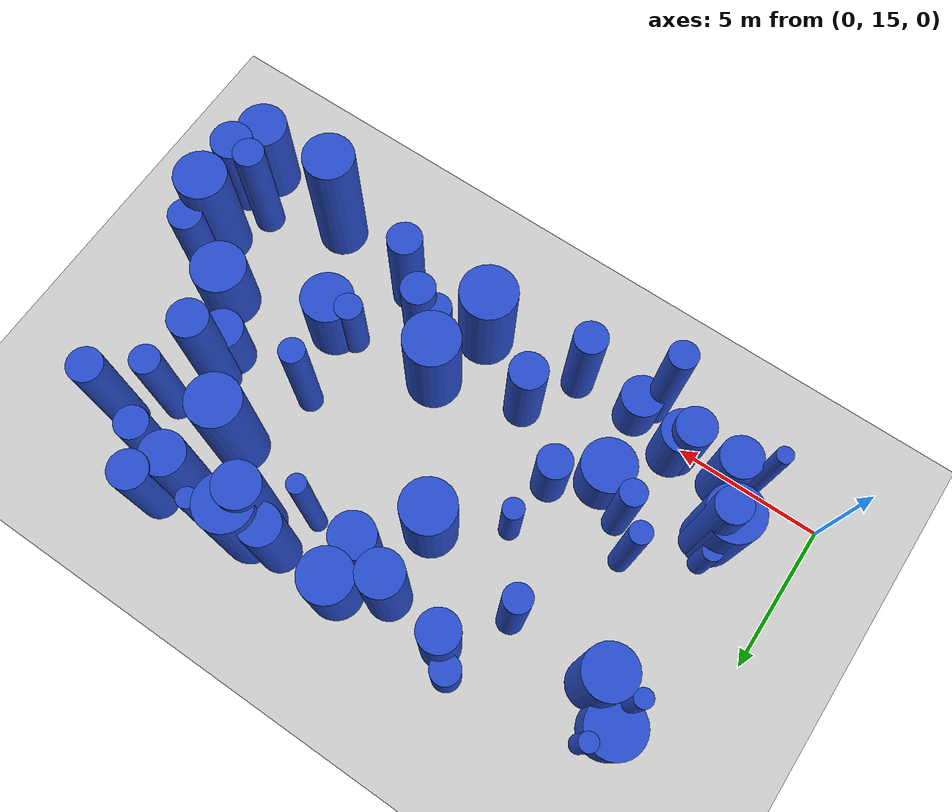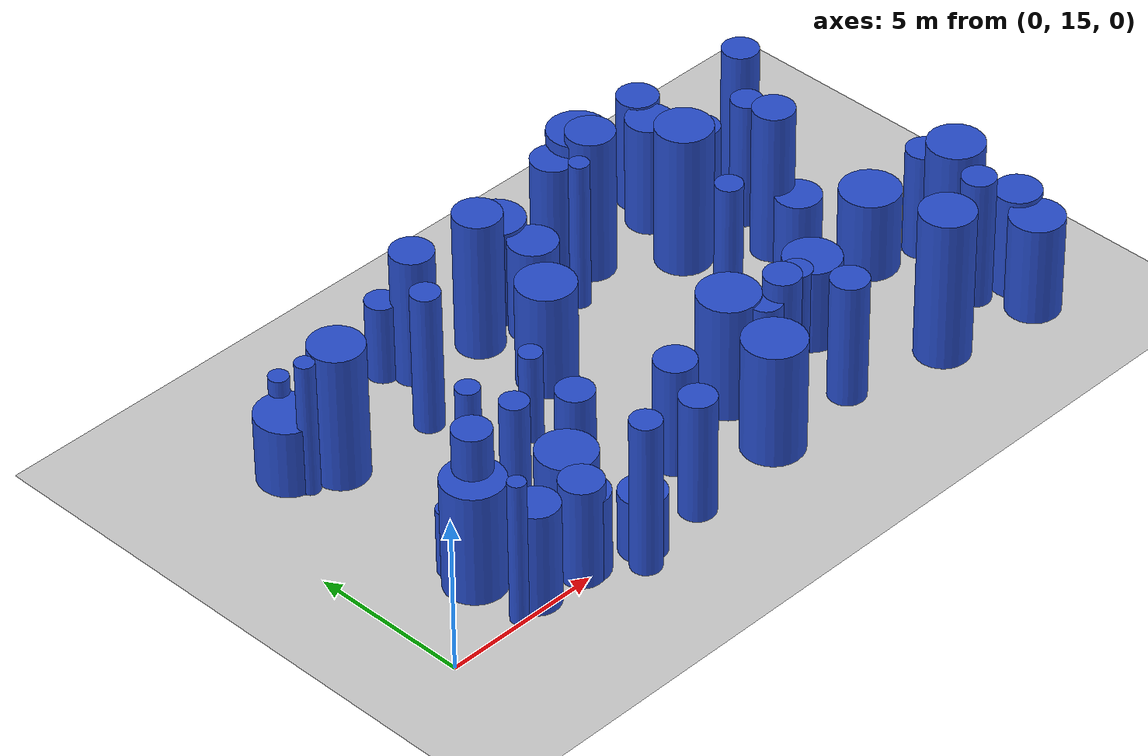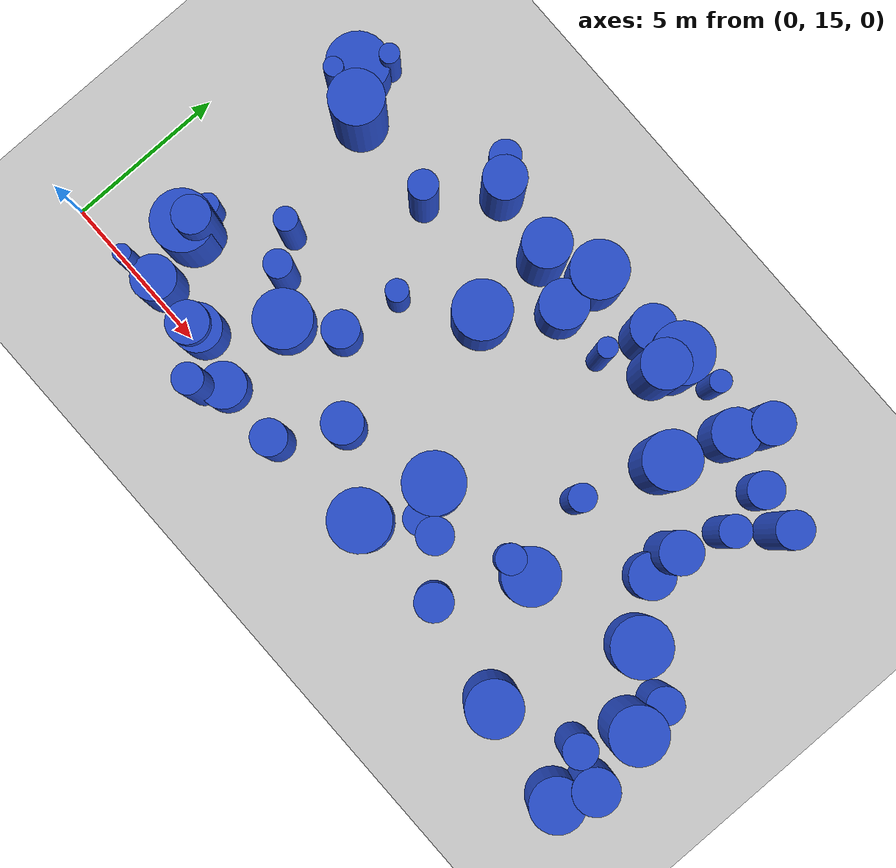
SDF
<sdf version="1.6">
 <world name="default">
  <model name="ground_plane">
   <static>1</static>
   <link name="link">
    <collision name="collision">
     <geometry><plane><normal>0 0 1</normal><size>100 100</size></plane></geometry>
     <surface><friction><ode><mu>100</mu><mu2>50</mu2></ode></friction></surface>
    </collision>
    <visual name="visual">
     <cast_shadows>0</cast_shadows>
     <geometry><plane><normal>0 0 1</normal><size>100 100</size></plane></geometry>
     <material>
      <script><uri>file://media/materials/scripts/gazebo.material</uri><name>Gazebo/Grey</name></script>
     </material>
    </visual>
   </link>
  </model>
  <model name="2">
   <static>0</static>
   <link name="link">
    <inertial>
     <mass>2</mass>
     <inertia><ixx>1.22837</ixx><ixy>0</ixy><ixz>0</ixz><iyy>1.22837</iyy><iyz>0</iyz><izz>0.232608</izz></inertia>
    </inertial>
    <collision name="collision">
     <geometry><cylinder><length>2.5831</length><radius>0.482294</radius></cylinder></geometry>
     <surface><contact><collide_without_contact>1</collide_without_contact></contact></surface>
    </collision>
    <visual name="visual">
     <geometry><cylinder><length>2.5831</length><radius>0.482294</radius></cylinder></geometry>
     <material>
      <script><uri>file://media/materials/scripts/gazebo.material</uri><name>Gazebo/Blue</name></script>
     </material>
    </visual>
    <gravity>0</gravity>
   </link>
   <pose>7.27465 25.3161 1.29155 0 -0 0</pose>
  </model>
  <model name="8">
   <static>0</static>
   <link name="link">
    <inertial>
     <mass>2</mass>
     <inertia><ixx>3.2449</ixx><ixy>0</ixy><ixz>0</ixz><iyy>3.2449</iyy><iyz>0</iyz><izz>0.0853454</izz></inertia>
    </inertial>
    <collision name="collision">
     <geometry><cylinder><length>4.3833</length><radius>0.292139</radius></cylinder></geometry>
     <surface><contact><collide_without_contact>1</collide_without_contact></contact></surface>
    </collision>
    <visual name="visual">
     <geometry><cylinder><length>4.3833</length><radius>0.292139</radius></cylinder></geometry>
     <material>
      <script><uri>file://media/materials/scripts/gazebo.material</uri><name>Gazebo/Blue</name></script>
     </material>
    </visual>
    <gravity>0</gravity>
   </link>
   <pose>2.40092 23.0819 2.19165 0 -0 0</pose>
  </model>
  <model name="18">
   <static>0</static>
   <link name="link">
    <inertial>
     <mass>2</mass>
     <inertia><ixx>1.88839</ixx><ixy>0</ixy><ixz>0</ixz><iyy>1.88839</iyy><iyz>0</iyz><izz>0.554769</izz></inertia>
    </inertial>
    <collision name="collision">
     <geometry><cylinder><length>3.10903</length><radius>0.744828</radius></cylinder></geometry>
     <surface><contact><collide_without_contact>1</collide_without_contact></contact></surface>
    </collision>
    <visual name="visual">
     <geometry><cylinder><length>3.10903</length><radius>0.744828</radius></cylinder></geometry>
     <material>
      <script><uri>file://media/materials/scripts/gazebo.material</uri><name>Gazebo/Blue</name></script>
     </material>
    </visual>
    <gravity>0</gravity>
   </link>
   <pose>11.6379 23.7222 1.55451 0 -0 0</pose>
  </model>
  <model name="25">
   <static>0</static>
   <link name="link">
    <inertial>
     <mass>2</mass>
     <inertia><ixx>3.26068</ixx><ixy>0</ixy><ixz>0</ixz><iyy>3.26068</iyy><iyz>0</iyz><izz>0.425175</izz></inertia>
    </inertial>
    <collision name="collision">
     <geometry><cylinder><length>4.27651</length><radius>0.652054</radius></cylinder></geometry>
     <surface><contact><collide_without_contact>1</collide_without_contact></contact></surface>
    </collision>
    <visual name="visual">
     <geometry><cylinder><length>4.27651</length><radius>0.652054</radius></cylinder></geometry>
     <material>
      <script><uri>file://media/materials/scripts/gazebo.material</uri><name>Gazebo/Blue</name></script>
     </material>
    </visual>
    <gravity>0</gravity>
   </link>
   <pose>7.91158 24.6829 2.13826 0 -0 0</pose>
  </model>
  <model name="37">
   <static>0</static>
   <link name="link">
    <inertial>
     <mass>2</mass>
     <inertia><ixx>4.25456</ixx><ixy>0</ixy><ixz>0</ixz><iyy>4.25456</iyy><iyz>0</iyz><izz>0.212678</izz></inertia>
    </inertial>
    <collision name="collision">
     <geometry><cylinder><length>4.98892</length><radius>0.46117</radius></cylinder></geometry>
     <surface><contact><collide_without_contact>1</collide_without_contact></contact></surface>
    </collision>
    <visual name="visual">
     <geometry><cylinder><length>4.98892</length><radius>0.46117</radius></cylinder></geometry>
     <material>
      <script><uri>file://media/materials/scripts/gazebo.material</uri><name>Gazebo/Blue</name></script>
     </material>
    </visual>
    <gravity>0</gravity>
   </link>
   <pose>6.44506 14.3001 2.49446 0 -0 0</pose>
  </model>
  <model name="54">
   <static>0</static>
   <link name="link">
    <inertial>
     <mass>2</mass>
     <inertia><ixx>2.11658</ixx><ixy>0</ixy><ixz>0</ixz><iyy>2.11658</iyy><iyz>0</iyz><izz>0.764272</izz></inertia>
    </inertial>
    <collision name="collision">
     <geometry><cylinder><length>3.22594</length><radius>0.874226</radius></cylinder></geometry>
     <surface><contact><collide_without_contact>1</collide_without_contact></contact></surface>
    </collision>
    <visual name="visual">
     <geometry><cylinder><length>3.22594</length><radius>0.874226</radius></cylinder></geometry>
     <material>
      <script><uri>file://media/materials/scripts/gazebo.material</uri><name>Gazebo/Blue</name></script>
     </material>
    </visual>
    <gravity>0</gravity>
   </link>
   <pose>11.5601 25.1175 1.61297 0 -0 0</pose>
  </model>
  <model name="58">
   <static>0</static>
   <link name="link">
    <inertial>
     <mass>2</mass>
     <inertia><ixx>4.36397</ixx><ixy>0</ixy><ixz>0</ixz><iyy>4.36397</iyy><iyz>0</iyz><izz>0.40593</izz></inertia>
    </inertial>
    <collision name="collision">
     <geometry><cylinder><length>4.9966</length><radius>0.637126</radius></cylinder></geometry>
     <surface><contact><collide_without_contact>1</collide_without_contact></contact></surface>
    </collision>
    <visual name="visual">
     <geometry><cylinder><length>4.9966</length><radius>0.637126</radius></cylinder></geometry>
     <material>
      <script><uri>file://media/materials/scripts/gazebo.material</uri><name>Gazebo/Blue</name></script>
     </material>
    </visual>
    <gravity>0</gravity>
   </link>
   <pose>19.0079 21.4355 2.4983 0 -0 0</pose>
  </model>
  <model name="60">
   <static>0</static>
   <link name="link">
    <inertial>
     <mass>2</mass>
     <inertia><ixx>2.10807</ixx><ixy>0</ixy><ixz>0</ixz><iyy>2.10807</iyy><iyz>0</iyz><izz>0.46283</izz></inertia>
    </inertial>
    <collision name="collision">
     <geometry><cylinder><length>3.35558</length><radius>0.680316</radius></cylinder></geometry>
     <surface><contact><collide_without_contact>1</collide_without_contact></contact></surface>
    </collision>
    <visual name="visual">
     <geometry><cylinder><length>3.35558</length><radius>0.680316</radius></cylinder></geometry>
     <material>
      <script><uri>file://media/materials/scripts/gazebo.material</uri><name>Gazebo/Blue</name></script>
     </material>
    </visual>
    <gravity>0</gravity>
   </link>
   <pose>3.4312 15.3851 1.67779 0 -0 0</pose>
  </model>
  <model name="68">
   <static>0</static>
   <link name="link">
    <inertial>
     <mass>2</mass>
     <inertia><ixx>3.23066</ixx><ixy>0</ixy><ixz>0</ixz><iyy>3.23066</iyy><iyz>0</iyz><izz>0.309378</izz></inertia>
    </inertial>
    <collision name="collision">
     <geometry><cylinder><length>4.29602</length><radius>0.556217</radius></cylinder></geometry>
     <surface><contact><collide_without_contact>1</collide_without_contact></contact></surface>
    </collision>
    <visual name="visual">
     <geometry><cylinder><length>4.29602</length><radius>0.556217</radius></cylinder></geometry>
     <material>
      <script><uri>file://media/materials/scripts/gazebo.material</uri><name>Gazebo/Blue</name></script>
     </material>
    </visual>
    <gravity>0</gravity>
   </link>
   <pose>14.1985 16.6179 2.14801 0 -0 0</pose>
  </model>
  <model name="72">
   <static>0</static>
   <link name="link">
    <inertial>
     <mass>2</mass>
     <inertia><ixx>1.15911</ixx><ixy>0</ixy><ixz>0</ixz><iyy>1.15911</iyy><iyz>0</iyz><izz>0.497429</izz></inertia>
    </inertial>
    <collision name="collision">
     <geometry><cylinder><length>2.33717</length><radius>0.705286</radius></cylinder></geometry>
     <surface><contact><collide_without_contact>1</collide_without_contact></contact></surface>
    </collision>
    <visual name="visual">
     <geometry><cylinder><length>2.33717</length><radius>0.705286</radius></cylinder></geometry>
     <material>
      <script><uri>file://media/materials/scripts/gazebo.material</uri><name>Gazebo/Blue</name></script>
     </material>
    </visual>
    <gravity>0</gravity>
   </link>
   <pose>19.1477 20.5677 1.16859 0 -0 0</pose>
  </model>
  <model name="76">
   <static>0</static>
   <link name="link">
    <inertial>
     <mass>2</mass>
     <inertia><ixx>4.14211</ixx><ixy>0</ixy><ixz>0</ixz><iyy>4.14211</iyy><iyz>0</iyz><izz>0.313951</izz></inertia>
    </inertial>
    <collision name="collision">
     <geometry><cylinder><length>4.88987</length><radius>0.560314</radius></cylinder></geometry>
     <surface><contact><collide_without_contact>1</collide_without_contact></contact></surface>
    </collision>
    <visual name="visual">
     <geometry><cylinder><length>4.88987</length><radius>0.560314</radius></cylinder></geometry>
     <material>
      <script><uri>file://media/materials/scripts/gazebo.material</uri><name>Gazebo/Blue</name></script>
     </material>
    </visual>
    <gravity>0</gravity>
   </link>
   <pose>20.5966 24.224 2.44494 0 -0 0</pose>
  </model>
  <model name="99">
   <static>0</static>
   <link name="link">
    <inertial>
     <mass>2</mass>
     <inertia><ixx>2.61287</ixx><ixy>0</ixy><ixz>0</ixz><iyy>2.61287</iyy><iyz>0</iyz><izz>0.855804</izz></inertia>
    </inertial>
    <collision name="collision">
     <geometry><cylinder><length>3.62074</length><radius>0.925097</radius></cylinder></geometry>
     <surface><contact><collide_without_contact>1</collide_without_contact></contact></surface>
    </collision>
    <visual name="visual">
     <geometry><cylinder><length>3.62074</length><radius>0.925097</radius></cylinder></geometry>
     <material>
      <script><uri>file://media/materials/scripts/gazebo.material</uri><name>Gazebo/Blue</name></script>
     </material>
    </visual>
    <gravity>0</gravity>
   </link>
   <pose>2.77032 17.0511 1.81037 0 -0 0</pose>
  </model>
  <model name="125">
   <static>0</static>
   <link name="link">
    <inertial>
     <mass>2</mass>
     <inertia><ixx>3.34124</ixx><ixy>0</ixy><ixz>0</ixz><iyy>3.34124</iyy><iyz>0</iyz><izz>0.173508</izz></inertia>
    </inertial>
    <collision name="collision">
     <geometry><cylinder><length>4.41893</length><radius>0.416543</radius></cylinder></geometry>
     <surface><contact><collide_without_contact>1</collide_without_contact></contact></surface>
    </collision>
    <visual name="visual">
     <geometry><cylinder><length>4.41893</length><radius>0.416543</radius></cylinder></geometry>
     <material>
      <script><uri>file://media/materials/scripts/gazebo.material</uri><name>Gazebo/Blue</name></script>
     </material>
    </visual>
    <gravity>0</gravity>
   </link>
   <pose>16.0917 20.4093 2.20946 0 -0 0</pose>
  </model>
  <model name="126">
   <static>0</static>
   <link name="link">
    <inertial>
     <mass>2</mass>
     <inertia><ixx>3.84882</ixx><ixy>0</ixy><ixz>0</ixz><iyy>3.84882</iyy><iyz>0</iyz><izz>0.201271</izz></inertia>
    </inertial>
    <collision name="collision">
     <geometry><cylinder><length>4.74227</length><radius>0.448632</radius></cylinder></geometry>
     <surface><contact><collide_without_contact>1</collide_without_contact></contact></surface>
    </collision>
    <visual name="visual">
     <geometry><cylinder><length>4.74227</length><radius>0.448632</radius></cylinder></geometry>
     <material>
      <script><uri>file://media/materials/scripts/gazebo.material</uri><name>Gazebo/Blue</name></script>
     </material>
    </visual>
    <gravity>0</gravity>
   </link>
   <pose>18.9164 21.5327 2.37113 0 -0 0</pose>
  </model>
  <model name="137">
   <static>0</static>
   <link name="link">
    <inertial>
     <mass>2</mass>
     <inertia><ixx>2.74249</ixx><ixy>0</ixy><ixz>0</ixz><iyy>2.74249</iyy><iyz>0</iyz><izz>0.301239</izz></inertia>
    </inertial>
    <collision name="collision">
     <geometry><cylinder><length>3.94351</length><radius>0.548853</radius></cylinder></geometry>
     <surface><contact><collide_without_contact>1</collide_without_contact></contact></surface>
    </collision>
    <visual name="visual">
     <geometry><cylinder><length>3.94351</length><radius>0.548853</radius></cylinder></geometry>
     <material>
      <script><uri>file://media/materials/scripts/gazebo.material</uri><name>Gazebo/Blue</name></script>
     </material>
    </visual>
    <gravity>0</gravity>
   </link>
   <pose>9.06308 14.9023 1.97175 0 -0 0</pose>
  </model>
  <model name="138">
   <static>0</static>
   <link name="link">
    <inertial>
     <mass>2</mass>
     <inertia><ixx>1.25555</ixx><ixy>0</ixy><ixz>0</ixz><iyy>1.25555</iyy><iyz>0</iyz><izz>0.317055</izz></inertia>
    </inertial>
    <collision name="collision">
     <geometry><cylinder><length>2.56557</length><radius>0.563077</radius></cylinder></geometry>
     <surface><contact><collide_without_contact>1</collide_without_contact></contact></surface>
    </collision>
    <visual name="visual">
     <geometry><cylinder><length>2.56557</length><radius>0.563077</radius></cylinder></geometry>
     <material>
      <script><uri>file://media/materials/scripts/gazebo.material</uri><name>Gazebo/Blue</name></script>
     </material>
    </visual>
    <gravity>0</gravity>
   </link>
   <pose>19.4157 24.6248 1.28278 0 -0 0</pose>
  </model>
  <model name="145">
   <static>0</static>
   <link name="link">
    <inertial>
     <mass>2</mass>
     <inertia><ixx>1.58926</ixx><ixy>0</ixy><ixz>0</ixz><iyy>1.58926</iyy><iyz>0</iyz><izz>0.858782</izz></inertia>
    </inertial>
    <collision name="collision">
     <geometry><cylinder><length>2.63803</length><radius>0.926705</radius></cylinder></geometry>
     <surface><contact><collide_without_contact>1</collide_without_contact></contact></surface>
    </collision>
    <visual name="visual">
     <geometry><cylinder><length>2.63803</length><radius>0.926705</radius></cylinder></geometry>
     <material>
      <script><uri>file://media/materials/scripts/gazebo.material</uri><name>Gazebo/Blue</name></script>
     </material>
    </visual>
    <gravity>0</gravity>
   </link>
   <pose>20.4552 18.9918 1.31901 0 -0 0</pose>
  </model>
  <model name="158">
   <static>0</static>
   <link name="link">
    <inertial>
     <mass>2</mass>
     <inertia><ixx>3.81418</ixx><ixy>0</ixy><ixz>0</ixz><iyy>3.81418</iyy><iyz>0</iyz><izz>0.83863</izz></inertia>
    </inertial>
    <collision name="collision">
     <geometry><cylinder><length>4.51323</length><radius>0.915767</radius></cylinder></geometry>
     <surface><contact><collide_without_contact>1</collide_without_contact></contact></surface>
    </collision>
    <visual name="visual">
     <geometry><cylinder><length>4.51323</length><radius>0.915767</radius></cylinder></geometry>
     <material>
      <script><uri>file://media/materials/scripts/gazebo.material</uri><name>Gazebo/Blue</name></script>
     </material>
    </visual>
    <gravity>0</gravity>
   </link>
   <pose>14.8925 25.1672 2.25661 0 -0 0</pose>
  </model>
  <model name="159">
   <static>0</static>
   <link name="link">
    <inertial>
     <mass>2</mass>
     <inertia><ixx>2.9021</ixx><ixy>0</ixy><ixz>0</ixz><iyy>2.9021</iyy><iyz>0</iyz><izz>0.328169</izz></inertia>
    </inertial>
    <collision name="collision">
     <geometry><cylinder><length>4.05316</length><radius>0.57286</radius></cylinder></geometry>
     <surface><contact><collide_without_contact>1</collide_without_contact></contact></surface>
    </collision>
    <visual name="visual">
     <geometry><cylinder><length>4.05316</length><radius>0.57286</radius></cylinder></geometry>
     <material>
      <script><uri>file://media/materials/scripts/gazebo.material</uri><name>Gazebo/Blue</name></script>
     </material>
    </visual>
    <gravity>0</gravity>
   </link>
   <pose>15.5833 15.3772 2.02658 0 -0 0</pose>
  </model>
  <model name="164">
   <static>0</static>
   <link name="link">
    <inertial>
     <mass>2</mass>
     <inertia><ixx>3.75948</ixx><ixy>0</ixy><ixz>0</ixz><iyy>3.75948</iyy><iyz>0</iyz><izz>0.530603</izz></inertia>
    </inertial>
    <collision name="collision">
     <geometry><cylinder><length>4.57876</length><radius>0.728425</radius></cylinder></geometry>
     <surface><contact><collide_without_contact>1</collide_without_contact></contact></surface>
    </collision>
    <visual name="visual">
     <geometry><cylinder><length>4.57876</length><radius>0.728425</radius></cylinder></geometry>
     <material>
      <script><uri>file://media/materials/scripts/gazebo.material</uri><name>Gazebo/Blue</name></script>
     </material>
    </visual>
    <gravity>0</gravity>
   </link>
   <pose>10.0972 24.3275 2.28938 0 -0 0</pose>
  </model>
  <model name="193">
   <static>0</static>
   <link name="link">
    <inertial>
     <mass>2</mass>
     <inertia><ixx>3.13722</ixx><ixy>0</ixy><ixz>0</ixz><iyy>3.13722</iyy><iyz>0</iyz><izz>0.127114</izz></inertia>
    </inertial>
    <collision name="collision">
     <geometry><cylinder><length>4.29441</length><radius>0.356531</radius></cylinder></geometry>
     <surface><contact><collide_without_contact>1</collide_without_contact></contact></surface>
    </collision>
    <visual name="visual">
     <geometry><cylinder><length>4.29441</length><radius>0.356531</radius></cylinder></geometry>
     <material>
      <script><uri>file://media/materials/scripts/gazebo.material</uri><name>Gazebo/Blue</name></script>
     </material>
    </visual>
    <gravity>0</gravity>
   </link>
   <pose>4.76137 19.2689 2.14721 0 -0 0</pose>
  </model>
  <model name="201">
   <static>0</static>
   <link name="link">
    <inertial>
     <mass>2</mass>
     <inertia><ixx>2.66965</ixx><ixy>0</ixy><ixz>0</ixz><iyy>2.66965</iyy><iyz>0</iyz><izz>0.181986</izz></inertia>
    </inertial>
    <collision name="collision">
     <geometry><cylinder><length>3.93344</length><radius>0.426598</radius></cylinder></geometry>
     <surface><contact><collide_without_contact>1</collide_without_contact></contact></surface>
    </collision>
    <visual name="visual">
     <geometry><cylinder><length>3.93344</length><radius>0.426598</radius></cylinder></geometry>
     <material>
      <script><uri>file://media/materials/scripts/gazebo.material</uri><name>Gazebo/Blue</name></script>
     </material>
    </visual>
    <gravity>0</gravity>
   </link>
   <pose>5.52647 18.2919 1.96672 0 -0 0</pose>
  </model>
  <model name="220">
   <static>0</static>
   <link name="link">
    <inertial>
     <mass>2</mass>
     <inertia><ixx>3.14732</ixx><ixy>0</ixy><ixz>0</ixz><iyy>3.14732</iyy><iyz>0</iyz><izz>0.266988</izz></inertia>
    </inertial>
    <collision name="collision">
     <geometry><cylinder><length>4.25241</length><radius>0.516709</radius></cylinder></geometry>
     <surface><contact><collide_without_contact>1</collide_without_contact></contact></surface>
    </collision>
    <visual name="visual">
     <geometry><cylinder><length>4.25241</length><radius>0.516709</radius></cylinder></geometry>
     <material>
      <script><uri>file://media/materials/scripts/gazebo.material</uri><name>Gazebo/Blue</name></script>
     </material>
    </visual>
    <gravity>0</gravity>
   </link>
   <pose>21.3533 15.7514 2.1262 0 -0 0</pose>
  </model>
  <model name="222">
   <static>0</static>
   <link name="link">
    <inertial>
     <mass>2</mass>
     <inertia><ixx>1.978</ixx><ixy>0</ixy><ixz>0</ixz><iyy>1.978</iyy><iyz>0</iyz><izz>0.418624</izz></inertia>
    </inertial>
    <collision name="collision">
     <geometry><cylinder><length>3.25763</length><radius>0.647012</radius></cylinder></geometry>
     <surface><contact><collide_without_contact>1</collide_without_contact></contact></surface>
    </collision>
    <visual name="visual">
     <geometry><cylinder><length>3.25763</length><radius>0.647012</radius></cylinder></geometry>
     <material>
      <script><uri>file://media/materials/scripts/gazebo.material</uri><name>Gazebo/Blue</name></script>
     </material>
    </visual>
    <gravity>0</gravity>
   </link>
   <pose>5.01282 15.2778 1.62881 0 -0 0</pose>
  </model>
  <model name="224">
   <static>0</static>
   <link name="link">
    <inertial>
     <mass>2</mass>
     <inertia><ixx>2.13754</ixx><ixy>0</ixy><ixz>0</ixz><iyy>2.13754</iyy><iyz>0</iyz><izz>0.501197</izz></inertia>
    </inertial>
    <collision name="collision">
     <geometry><cylinder><length>3.36477</length><radius>0.707953</radius></cylinder></geometry>
     <surface><contact><collide_without_contact>1</collide_without_contact></contact></surface>
    </collision>
    <visual name="visual">
     <geometry><cylinder><length>3.36477</length><radius>0.707953</radius></cylinder></geometry>
     <material>
      <script><uri>file://media/materials/scripts/gazebo.material</uri><name>Gazebo/Blue</name></script>
     </material>
    </visual>
    <gravity>0</gravity>
   </link>
   <pose>22.593 15.3313 1.68238 0 -0 0</pose>
  </model>
  <model name="240">
   <static>0</static>
   <link name="link">
    <inertial>
     <mass>2</mass>
     <inertia><ixx>2.06992</ixx><ixy>0</ixy><ixz>0</ixz><iyy>2.06992</iyy><iyz>0</iyz><izz>0.686423</izz></inertia>
    </inertial>
    <collision name="collision">
     <geometry><cylinder><length>3.21873</length><radius>0.828507</radius></cylinder></geometry>
     <surface><contact><collide_without_contact>1</collide_without_contact></contact></surface>
    </collision>
    <visual name="visual">
     <geometry><cylinder><length>3.21873</length><radius>0.828507</radius></cylinder></geometry>
     <material>
      <script><uri>file://media/materials/scripts/gazebo.material</uri><name>Gazebo/Blue</name></script>
     </material>
    </visual>
    <gravity>0</gravity>
   </link>
   <pose>22.1756 14.2551 1.60937 0 -0 0</pose>
  </model>
  <model name="244">
   <static>0</static>
   <link name="link">
    <inertial>
     <mass>2</mass>
     <inertia><ixx>4.27315</ixx><ixy>0</ixy><ixz>0</ixz><iyy>4.27315</iyy><iyz>0</iyz><izz>0.321418</izz></inertia>
    </inertial>
    <collision name="collision">
     <geometry><cylinder><length>4.96736</length><radius>0.566938</radius></cylinder></geometry>
     <surface><contact><collide_without_contact>1</collide_without_contact></contact></surface>
    </collision>
    <visual name="visual">
     <geometry><cylinder><length>4.96736</length><radius>0.566938</radius></cylinder></geometry>
     <material>
      <script><uri>file://media/materials/scripts/gazebo.material</uri><name>Gazebo/Blue</name></script>
     </material>
    </visual>
    <gravity>0</gravity>
   </link>
   <pose>3.04799 17.3425 2.48368 0 -0 0</pose>
  </model>
  <model name="250">
   <static>0</static>
   <link name="link">
    <inertial>
     <mass>2</mass>
     <inertia><ixx>2.24118</ixx><ixy>0</ixy><ixz>0</ixz><iyy>2.24118</iyy><iyz>0</iyz><izz>0.314927</izz></inertia>
    </inertial>
    <collision name="collision">
     <geometry><cylinder><length>3.53586</length><radius>0.561184</radius></cylinder></geometry>
     <surface><contact><collide_without_contact>1</collide_without_contact></contact></surface>
    </collision>
    <visual name="visual">
     <geometry><cylinder><length>3.53586</length><radius>0.561184</radius></cylinder></geometry>
     <material>
      <script><uri>file://media/materials/scripts/gazebo.material</uri><name>Gazebo/Blue</name></script>
     </material>
    </visual>
    <gravity>0</gravity>
   </link>
   <pose>22.0371 18.3769 1.76793 0 -0 0</pose>
  </model>
  <model name="260">
   <static>0</static>
   <link name="link">
    <inertial>
     <mass>2</mass>
     <inertia><ixx>1.48732</ixx><ixy>0</ixy><ixz>0</ixz><iyy>1.48732</iyy><iyz>0</iyz><izz>0.326078</izz></inertia>
    </inertial>
    <collision name="collision">
     <geometry><cylinder><length>2.81881</length><radius>0.571033</radius></cylinder></geometry>
     <surface><contact><collide_without_contact>1</collide_without_contact></contact></surface>
    </collision>
    <visual name="visual">
     <geometry><cylinder><length>2.81881</length><radius>0.571033</radius></cylinder></geometry>
     <material>
      <script><uri>file://media/materials/scripts/gazebo.material</uri><name>Gazebo/Blue</name></script>
     </material>
    </visual>
    <gravity>0</gravity>
   </link>
   <pose>7.97253 18.4479 1.4094 0 -0 0</pose>
  </model>
  <model name="262">
   <static>0</static>
   <link name="link">
    <inertial>
     <mass>2</mass>
     <inertia><ixx>4.07851</ixx><ixy>0</ixy><ixz>0</ixz><iyy>4.07851</iyy><iyz>0</iyz><izz>0.09361</izz></inertia>
    </inertial>
    <collision name="collision">
     <geometry><cylinder><length>4.91836</length><radius>0.305958</radius></cylinder></geometry>
     <surface><contact><collide_without_contact>1</collide_without_contact></contact></surface>
    </collision>
    <visual name="visual">
     <geometry><cylinder><length>4.91836</length><radius>0.305958</radius></cylinder></geometry>
     <material>
      <script><uri>file://media/materials/scripts/gazebo.material</uri><name>Gazebo/Blue</name></script>
     </material>
    </visual>
    <gravity>0</gravity>
   </link>
   <pose>13.4034 23.6331 2.45918 0 -0 0</pose>
  </model>
  <model name="274">
   <static>0</static>
   <link name="link">
    <inertial>
     <mass>2</mass>
     <inertia><ixx>2.36523</ixx><ixy>0</ixy><ixz>0</ixz><iyy>2.36523</iyy><iyz>0</iyz><izz>0.389089</izz></inertia>
    </inertial>
    <collision name="collision">
     <geometry><cylinder><length>3.60889</length><radius>0.62377</radius></cylinder></geometry>
     <surface><contact><collide_without_contact>1</collide_without_contact></contact></surface>
    </collision>
    <visual name="visual">
     <geometry><cylinder><length>3.60889</length><radius>0.62377</radius></cylinder></geometry>
     <material>
      <script><uri>file://media/materials/scripts/gazebo.material</uri><name>Gazebo/Blue</name></script>
     </material>
    </visual>
    <gravity>0</gravity>
   </link>
   <pose>10.0898 16.7271 1.80445 0 -0 0</pose>
  </model>
  <model name="279">
   <static>0</static>
   <link name="link">
    <inertial>
     <mass>2</mass>
     <inertia><ixx>1.15917</ixx><ixy>0</ixy><ixz>0</ixz><iyy>1.15917</iyy><iyz>0</iyz><izz>0.807337</izz></inertia>
    </inertial>
    <collision name="collision">
     <geometry><cylinder><length>2.12909</length><radius>0.898519</radius></cylinder></geometry>
     <surface><contact><collide_without_contact>1</collide_without_contact></contact></surface>
    </collision>
    <visual name="visual">
     <geometry><cylinder><length>2.12909</length><radius>0.898519</radius></cylinder></geometry>
     <material>
      <script><uri>file://media/materials/scripts/gazebo.material</uri><name>Gazebo/Blue</name></script>
     </material>
    </visual>
    <gravity>0</gravity>
   </link>
   <pose>6.58471 17.4071 1.06455 0 -0 0</pose>
  </model>
  <model name="285">
   <static>0</static>
   <link name="link">
    <inertial>
     <mass>2</mass>
     <inertia><ixx>3.06325</ixx><ixy>0</ixy><ixz>0</ixz><iyy>3.06325</iyy><iyz>0</iyz><izz>0.459008</izz></inertia>
    </inertial>
    <collision name="collision">
     <geometry><cylinder><length>4.12341</length><radius>0.677501</radius></cylinder></geometry>
     <surface><contact><collide_without_contact>1</collide_without_contact></contact></surface>
    </collision>
    <visual name="visual">
     <geometry><cylinder><length>4.12341</length><radius>0.677501</radius></cylinder></geometry>
     <material>
      <script><uri>file://media/materials/scripts/gazebo.material</uri><name>Gazebo/Blue</name></script>
     </material>
    </visual>
    <gravity>0</gravity>
   </link>
   <pose>13.8036 25.0693 2.0617 0 -0 0</pose>
  </model>
  <model name="286">
   <static>0</static>
   <link name="link">
    <inertial>
     <mass>2</mass>
     <inertia><ixx>1.40685</ixx><ixy>0</ixy><ixz>0</ixz><iyy>1.40685</iyy><iyz>0</iyz><izz>0.216245</izz></inertia>
    </inertial>
    <collision name="collision">
     <geometry><cylinder><length>2.79149</length><radius>0.465022</radius></cylinder></geometry>
     <surface><contact><collide_without_contact>1</collide_without_contact></contact></surface>
    </collision>
    <visual name="visual">
     <geometry><cylinder><length>2.79149</length><radius>0.465022</radius></cylinder></geometry>
     <material>
      <script><uri>file://media/materials/scripts/gazebo.material</uri><name>Gazebo/Blue</name></script>
     </material>
    </visual>
    <gravity>0</gravity>
   </link>
   <pose>16.1155 17.8211 1.39574 0 -0 0</pose>
  </model>
  <model name="295">
   <static>0</static>
   <link name="link">
    <inertial>
     <mass>2</mass>
     <inertia><ixx>1.48766</ixx><ixy>0</ixy><ixz>0</ixz><iyy>1.48766</iyy><iyz>0</iyz><izz>0.536914</izz></inertia>
    </inertial>
    <collision name="collision">
     <geometry><cylinder><length>2.70467</length><radius>0.732744</radius></cylinder></geometry>
     <surface><contact><collide_without_contact>1</collide_without_contact></contact></surface>
    </collision>
    <visual name="visual">
     <geometry><cylinder><length>2.70467</length><radius>0.732744</radius></cylinder></geometry>
     <material>
      <script><uri>file://media/materials/scripts/gazebo.material</uri><name>Gazebo/Blue</name></script>
     </material>
    </visual>
    <gravity>0</gravity>
   </link>
   <pose>5.23721 15.388 1.35234 0 -0 0</pose>
  </model>
  <model name="302">
   <static>0</static>
   <link name="link">
    <inertial>
     <mass>2</mass>
     <inertia><ixx>3.61802</ixx><ixy>0</ixy><ixz>0</ixz><iyy>3.61802</iyy><iyz>0</iyz><izz>0.197455</izz></inertia>
    </inertial>
    <collision name="collision">
     <geometry><cylinder><length>4.59519</length><radius>0.444359</radius></cylinder></geometry>
     <surface><contact><collide_without_contact>1</collide_without_contact></contact></surface>
    </collision>
    <visual name="visual">
     <geometry><cylinder><length>4.59519</length><radius>0.444359</radius></cylinder></geometry>
     <material>
      <script><uri>file://media/materials/scripts/gazebo.material</uri><name>Gazebo/Blue</name></script>
     </material>
    </visual>
    <gravity>0</gravity>
   </link>
   <pose>6.59784 22.7795 2.29759 0 -0 0</pose>
  </model>
  <model name="305">
   <static>0</static>
   <link name="link">
    <inertial>
     <mass>2</mass>
     <inertia><ixx>1.26854</ixx><ixy>0</ixy><ixz>0</ixz><iyy>1.26854</iyy><iyz>0</iyz><izz>0.904178</izz></inertia>
    </inertial>
    <collision name="collision">
     <geometry><cylinder><length>2.2133</length><radius>0.950883</radius></cylinder></geometry>
     <surface><contact><collide_without_contact>1</collide_without_contact></contact></surface>
    </collision>
    <visual name="visual">
     <geometry><cylinder><length>2.2133</length><radius>0.950883</radius></cylinder></geometry>
     <material>
      <script><uri>file://media/materials/scripts/gazebo.material</uri><name>Gazebo/Blue</name></script>
     </material>
    </visual>
    <gravity>0</gravity>
   </link>
   <pose>2.39537 23.8954 1.10665 0 -0 0</pose>
  </model>
  <model name="312">
   <static>0</static>
   <link name="link">
    <inertial>
     <mass>2</mass>
     <inertia><ixx>1.64833</ixx><ixy>0</ixy><ixz>0</ixz><iyy>1.64833</iyy><iyz>0</iyz><izz>0.764226</izz></inertia>
    </inertial>
    <collision name="collision">
     <geometry><cylinder><length>2.75632</length><radius>0.8742</radius></cylinder></geometry>
     <surface><contact><collide_without_contact>1</collide_without_contact></contact></surface>
    </collision>
    <visual name="visual">
     <geometry><cylinder><length>2.75632</length><radius>0.8742</radius></cylinder></geometry>
     <material>
      <script><uri>file://media/materials/scripts/gazebo.material</uri><name>Gazebo/Blue</name></script>
     </material>
    </visual>
    <gravity>0</gravity>
   </link>
   <pose>16.8675 17.9294 1.37816 0 -0 0</pose>
  </model>
  <model name="313">
   <static>0</static>
   <link name="link">
    <inertial>
     <mass>2</mass>
     <inertia><ixx>3.45773</ixx><ixy>0</ixy><ixz>0</ixz><iyy>3.45773</iyy><iyz>0</iyz><izz>0.751185</izz></inertia>
    </inertial>
    <collision name="collision">
     <geometry><cylinder><length>4.30033</length><radius>0.866709</radius></cylinder></geometry>
     <surface><contact><collide_without_contact>1</collide_without_contact></contact></surface>
    </collision>
    <visual name="visual">
     <geometry><cylinder><length>4.30033</length><radius>0.866709</radius></cylinder></geometry>
     <material>
      <script><uri>file://media/materials/scripts/gazebo.material</uri><name>Gazebo/Blue</name></script>
     </material>
    </visual>
    <gravity>0</gravity>
   </link>
   <pose>22.0897 17.2629 2.15017 0 -0 0</pose>
  </model>
  <model name="320">
   <static>0</static>
   <link name="link">
    <inertial>
     <mass>2</mass>
     <inertia>
      <ixx>1.31332</ixx>
      <ixy>0</ixy>
      <ixz>0</ixz>
      <iyy>1.31332</iyy>
      <iyz>0</iyz>
      <izz>0.0936573</izz>
     </inertia>
    </inertial>
    <collision name="collision">
     <geometry><cylinder><length>2.75662</length><radius>0.306035</radius></cylinder></geometry>
     <surface><contact><collide_without_contact>1</collide_without_contact></contact></surface>
    </collision>
    <visual name="visual">
     <geometry><cylinder><length>2.75662</length><radius>0.306035</radius></cylinder></geometry>
     <material>
      <script><uri>file://media/materials/scripts/gazebo.material</uri><name>Gazebo/Blue</name></script>
     </material>
    </visual>
    <gravity>0</gravity>
   </link>
   <pose>2.87323 24.7123 1.37831 0 -0 0</pose>
  </model>
  <model name="321">
   <static>0</static>
   <link name="link">
    <inertial>
     <mass>2</mass>
     <inertia><ixx>4.04526</ixx><ixy>0</ixy><ixz>0</ixz><iyy>4.04526</iyy><iyz>0</iyz><izz>0.755439</izz></inertia>
    </inertial>
    <collision name="collision">
     <geometry><cylinder><length>4.69098</length><radius>0.86916</radius></cylinder></geometry>
     <surface><contact><collide_without_contact>1</collide_without_contact></contact></surface>
    </collision>
    <visual name="visual">
     <geometry><cylinder><length>4.69098</length><radius>0.86916</radius></cylinder></geometry>
     <material>
      <script><uri>file://media/materials/scripts/gazebo.material</uri><name>Gazebo/Blue</name></script>
     </material>
    </visual>
    <gravity>0</gravity>
   </link>
   <pose>16.9378 22.9629 2.34549 0 -0 0</pose>
  </model>
  <model name="324">
   <static>0</static>
   <link name="link">
    <inertial>
     <mass>2</mass>
     <inertia><ixx>2.78181</ixx><ixy>0</ixy><ixz>0</ixz><iyy>2.78181</iyy><iyz>0</iyz><izz>0.889732</izz></inertia>
    </inertial>
    <collision name="collision">
     <geometry><cylinder><length>3.74455</length><radius>0.943256</radius></cylinder></geometry>
     <surface><contact><collide_without_contact>1</collide_without_contact></contact></surface>
    </collision>
    <visual name="visual">
     <geometry><cylinder><length>3.74455</length><radius>0.943256</radius></cylinder></geometry>
     <material>
      <script><uri>file://media/materials/scripts/gazebo.material</uri><name>Gazebo/Blue</name></script>
     </material>
    </visual>
    <gravity>0</gravity>
   </link>
   <pose>12.4847 15.3006 1.87228 0 -0 0</pose>
  </model>
  <model name="335">
   <static>0</static>
   <link name="link">
    <inertial>
     <mass>2</mass>
     <inertia><ixx>2.80488</ixx><ixy>0</ixy><ixz>0</ixz><iyy>2.80488</iyy><iyz>0</iyz><izz>0.865118</izz></inertia>
    </inertial>
    <collision name="collision">
     <geometry><cylinder><length>3.77278</length><radius>0.930117</radius></cylinder></geometry>
     <surface><contact><collide_without_contact>1</collide_without_contact></contact></surface>
    </collision>
    <visual name="visual">
     <geometry><cylinder><length>3.77278</length><radius>0.930117</radius></cylinder></geometry>
     <material>
      <script><uri>file://media/materials/scripts/gazebo.material</uri><name>Gazebo/Blue</name></script>
     </material>
    </visual>
    <gravity>0</gravity>
   </link>
   <pose>13.0672 17.5651 1.88639 0 -0 0</pose>
  </model>
  <model name="349">
   <static>0</static>
   <link name="link">
    <inertial>
     <mass>2</mass>
     <inertia><ixx>2.46085</ixx><ixy>0</ixy><ixz>0</ixz><iyy>2.46085</iyy><iyz>0</iyz><izz>0.53316</izz></inertia>
    </inertial>
    <collision name="collision">
     <geometry><cylinder><length>3.62844</length><radius>0.730178</radius></cylinder></geometry>
     <surface><contact><collide_without_contact>1</collide_without_contact></contact></surface>
    </collision>
    <visual name="visual">
     <geometry><cylinder><length>3.62844</length><radius>0.730178</radius></cylinder></geometry>
     <material>
      <script><uri>file://media/materials/scripts/gazebo.material</uri><name>Gazebo/Blue</name></script>
     </material>
    </visual>
    <gravity>0</gravity>
   </link>
   <pose>17.5803 24.9371 1.81422 0 -0 0</pose>
  </model>
  <model name="354">
   <static>0</static>
   <link name="link">
    <inertial>
     <mass>2</mass>
     <inertia>
      <ixx>0.919214</ixx>
      <ixy>0</ixy>
      <ixz>0</ixz>
      <iyy>0.919214</iyy>
      <iyz>0</iyz>
      <izz>0.494793</izz>
     </inertia>
    </inertial>
    <collision name="collision">
     <geometry><cylinder><length>2.00771</length><radius>0.703415</radius></cylinder></geometry>
     <surface><contact><collide_without_contact>1</collide_without_contact></contact></surface>
    </collision>
    <visual name="visual">
     <geometry><cylinder><length>2.00771</length><radius>0.703415</radius></cylinder></geometry>
     <material>
      <script><uri>file://media/materials/scripts/gazebo.material</uri><name>Gazebo/Blue</name></script>
     </material>
    </visual>
    <gravity>0</gravity>
   </link>
   <pose>6.89858 14.8534 1.00386 0 -0 0</pose>
  </model>
  <model name="362">
   <static>0</static>
   <link name="link">
    <inertial>
     <mass>2</mass>
     <inertia><ixx>2.09269</ixx><ixy>0</ixy><ixz>0</ixz><iyy>2.09269</iyy><iyz>0</iyz><izz>0.111361</izz></inertia>
    </inertial>
    <collision name="collision">
     <geometry><cylinder><length>3.496</length><radius>0.333708</radius></cylinder></geometry>
     <surface><contact><collide_without_contact>1</collide_without_contact></contact></surface>
    </collision>
    <visual name="visual">
     <geometry><cylinder><length>3.496</length><radius>0.333708</radius></cylinder></geometry>
     <material>
      <script><uri>file://media/materials/scripts/gazebo.material</uri><name>Gazebo/Blue</name></script>
     </material>
    </visual>
    <gravity>0</gravity>
   </link>
   <pose>16.1903 25.5768 1.748 0 -0 0</pose>
  </model>
  <model name="367">
   <static>0</static>
   <link name="link">
    <inertial>
     <mass>2</mass>
     <inertia><ixx>2.35981</ixx><ixy>0</ixy><ixz>0</ixz><iyy>2.35981</iyy><iyz>0</iyz><izz>0.79383</izz></inertia>
    </inertial>
    <collision name="collision">
     <geometry><cylinder><length>3.43182</length><radius>0.890971</radius></cylinder></geometry>
     <surface><contact><collide_without_contact>1</collide_without_contact></contact></surface>
    </collision>
    <visual name="visual">
     <geometry><cylinder><length>3.43182</length><radius>0.890971</radius></cylinder></geometry>
     <material>
      <script><uri>file://media/materials/scripts/gazebo.material</uri><name>Gazebo/Blue</name></script>
     </material>
    </visual>
    <gravity>0</gravity>
   </link>
   <pose>10.2521 21.8246 1.71591 0 -0 0</pose>
  </model>
  <model name="379">
   <static>0</static>
   <link name="link">
    <inertial>
     <mass>2</mass>
     <inertia><ixx>2.40781</ixx><ixy>0</ixy><ixz>0</ixz><iyy>2.40781</iyy><iyz>0</iyz><izz>0.25377</izz></inertia>
    </inertial>
    <collision name="collision">
     <geometry><cylinder><length>3.6994</length><radius>0.503756</radius></cylinder></geometry>
     <surface><contact><collide_without_contact>1</collide_without_contact></contact></surface>
    </collision>
    <visual name="visual">
     <geometry><cylinder><length>3.6994</length><radius>0.503756</radius></cylinder></geometry>
     <material>
      <script><uri>file://media/materials/scripts/gazebo.material</uri><name>Gazebo/Blue</name></script>
     </material>
    </visual>
    <gravity>0</gravity>
   </link>
   <pose>13.5567 16.6291 1.8497 0 -0 0</pose>
  </model>
  <model name="380">
   <static>0</static>
   <link name="link">
    <inertial>
     <mass>2</mass>
     <inertia><ixx>2.48884</ixx><ixy>0</ixy><ixz>0</ixz><iyy>2.48884</iyy><iyz>0</iyz><izz>0.406811</izz></inertia>
    </inertial>
    <collision name="collision">
     <geometry><cylinder><length>3.70305</length><radius>0.637817</radius></cylinder></geometry>
     <surface><contact><collide_without_contact>1</collide_without_contact></contact></surface>
    </collision>
    <visual name="visual">
     <geometry><cylinder><length>3.70305</length><radius>0.637817</radius></cylinder></geometry>
     <material>
      <script><uri>file://media/materials/scripts/gazebo.material</uri><name>Gazebo/Blue</name></script>
     </material>
    </visual>
    <gravity>0</gravity>
   </link>
   <pose>18.0615 25.8887 1.85153 0 -0 0</pose>
  </model>
  <model name="403">
   <static>0</static>
   <link name="link">
    <inertial>
     <mass>2</mass>
     <inertia>
      <ixx>3.71436</ixx>
      <ixy>0</ixy>
      <ixz>0</ixz>
      <iyy>3.71436</iyy>
      <iyz>0</iyz>
      <izz>0.0707189</izz>
     </inertia>
    </inertial>
    <collision name="collision">
     <geometry><cylinder><length>4.6983</length><radius>0.26593</radius></cylinder></geometry>
     <surface><contact><collide_without_contact>1</collide_without_contact></contact></surface>
    </collision>
    <visual name="visual">
     <geometry><cylinder><length>4.6983</length><radius>0.26593</radius></cylinder></geometry>
     <material>
      <script><uri>file://media/materials/scripts/gazebo.material</uri><name>Gazebo/Blue</name></script>
     </material>
    </visual>
    <gravity>0</gravity>
   </link>
   <pose>2.55624 15.1915 2.34915 0 -0 0</pose>
  </model>
  <model name="406">
   <static>0</static>
   <link name="link">
    <inertial>
     <mass>2</mass>
     <inertia><ixx>4.39638</ixx><ixy>0</ixy><ixz>0</ixz><iyy>4.39638</iyy><iyz>0</iyz><izz>0.698768</izz></inertia>
    </inertial>
    <collision name="collision">
     <geometry><cylinder><length>4.92768</length><radius>0.835924</radius></cylinder></geometry>
     <surface><contact><collide_without_contact>1</collide_without_contact></contact></surface>
    </collision>
    <visual name="visual">
     <geometry><cylinder><length>4.92768</length><radius>0.835924</radius></cylinder></geometry>
     <material>
      <script><uri>file://media/materials/scripts/gazebo.material</uri><name>Gazebo/Blue</name></script>
     </material>
    </visual>
    <gravity>0</gravity>
   </link>
   <pose>18.8583 14.7406 2.46384 0 -0 0</pose>
  </model>
  <model name="416">
   <static>0</static>
   <link name="link">
    <inertial>
     <mass>2</mass>
     <inertia><ixx>1.48748</ixx><ixy>0</ixy><ixz>0</ixz><iyy>1.48748</iyy><iyz>0</iyz><izz>0.12147</izz></inertia>
    </inertial>
    <collision name="collision">
     <geometry><cylinder><length>2.92582</length><radius>0.348525</radius></cylinder></geometry>
     <surface><contact><collide_without_contact>1</collide_without_contact></contact></surface>
    </collision>
    <visual name="visual">
     <geometry><cylinder><length>2.92582</length><radius>0.348525</radius></cylinder></geometry>
     <material>
      <script><uri>file://media/materials/scripts/gazebo.material</uri><name>Gazebo/Blue</name></script>
     </material>
    </visual>
    <gravity>0</gravity>
   </link>
   <pose>8.20265 20.3858 1.46291 0 -0 0</pose>
  </model>
  <model name="440">
   <static>0</static>
   <link name="link">
    <inertial>
     <mass>2</mass>
     <inertia><ixx>4.1137</ixx><ixy>0</ixy><ixz>0</ixz><iyy>4.1137</iyy><iyz>0</iyz><izz>0.543625</izz></inertia>
    </inertial>
    <collision name="collision">
     <geometry><cylinder><length>4.80118</length><radius>0.737309</radius></cylinder></geometry>
     <surface><contact><collide_without_contact>1</collide_without_contact></contact></surface>
    </collision>
    <visual name="visual">
     <geometry><cylinder><length>4.80118</length><radius>0.737309</radius></cylinder></geometry>
     <material>
      <script><uri>file://media/materials/scripts/gazebo.material</uri><name>Gazebo/Blue</name></script>
     </material>
    </visual>
    <gravity>0</gravity>
   </link>
   <pose>14.8078 24.5815 2.40059 0 -0 0</pose>
  </model>
  <model name="468">
   <static>0</static>
   <link name="link">
    <inertial>
     <mass>2</mass>
     <inertia><ixx>3.0798</ixx><ixy>0</ixy><ixz>0</ixz><iyy>3.0798</iyy><iyz>0</iyz><izz>0.233439</izz></inertia>
    </inertial>
    <collision name="collision">
     <geometry><cylinder><length>4.21645</length><radius>0.483156</radius></cylinder></geometry>
     <surface><contact><collide_without_contact>1</collide_without_contact></contact></surface>
    </collision>
    <visual name="visual">
     <geometry><cylinder><length>4.21645</length><radius>0.483156</radius></cylinder></geometry>
     <material>
      <script><uri>file://media/materials/scripts/gazebo.material</uri><name>Gazebo/Blue</name></script>
     </material>
    </visual>
    <gravity>0</gravity>
   </link>
   <pose>19.596 23.0257 2.10823 0 -0 0</pose>
  </model>
  <model name="478">
   <static>0</static>
   <link name="link">
    <inertial>
     <mass>2</mass>
     <inertia><ixx>3.62532</ixx><ixy>0</ixy><ixz>0</ixz><iyy>3.62532</iyy><iyz>0</iyz><izz>0.676396</izz></inertia>
    </inertial>
    <collision name="collision">
     <geometry><cylinder><length>4.44103</length><radius>0.822433</radius></cylinder></geometry>
     <surface><contact><collide_without_contact>1</collide_without_contact></contact></surface>
    </collision>
    <visual name="visual">
     <geometry><cylinder><length>4.44103</length><radius>0.822433</radius></cylinder></geometry>
     <material>
      <script><uri>file://media/materials/scripts/gazebo.material</uri><name>Gazebo/Blue</name></script>
     </material>
    </visual>
    <gravity>0</gravity>
   </link>
   <pose>3.48347 22.997 2.22051 0 -0 0</pose>
  </model>
  <model name="482">
   <static>0</static>
   <link name="link">
    <inertial>
     <mass>2</mass>
     <inertia>
      <ixx>0.820223</ixx>
      <ixy>0</ixy>
      <ixz>0</ixz>
      <iyy>0.820223</iyy>
      <iyz>0</iyz>
      <izz>0.112547</izz>
     </inertia>
    </inertial>
    <collision name="collision">
     <geometry><cylinder><length>2.14096</length><radius>0.335481</radius></cylinder></geometry>
     <surface><contact><collide_without_contact>1</collide_without_contact></contact></surface>
    </collision>
    <visual name="visual">
     <geometry><cylinder><length>2.14096</length><radius>0.335481</radius></cylinder></geometry>
     <material>
      <script><uri>file://media/materials/scripts/gazebo.material</uri><name>Gazebo/Blue</name></script>
     </material>
    </visual>
    <gravity>0</gravity>
   </link>
   <pose>2.6436 17.9393 1.07048 0 -0 0</pose>
  </model>
 </world>
</sdf>
